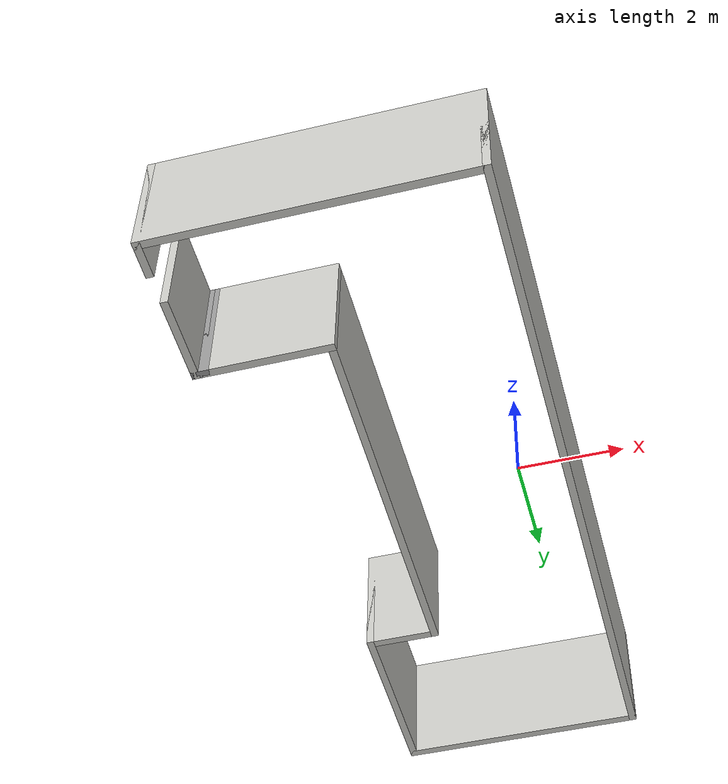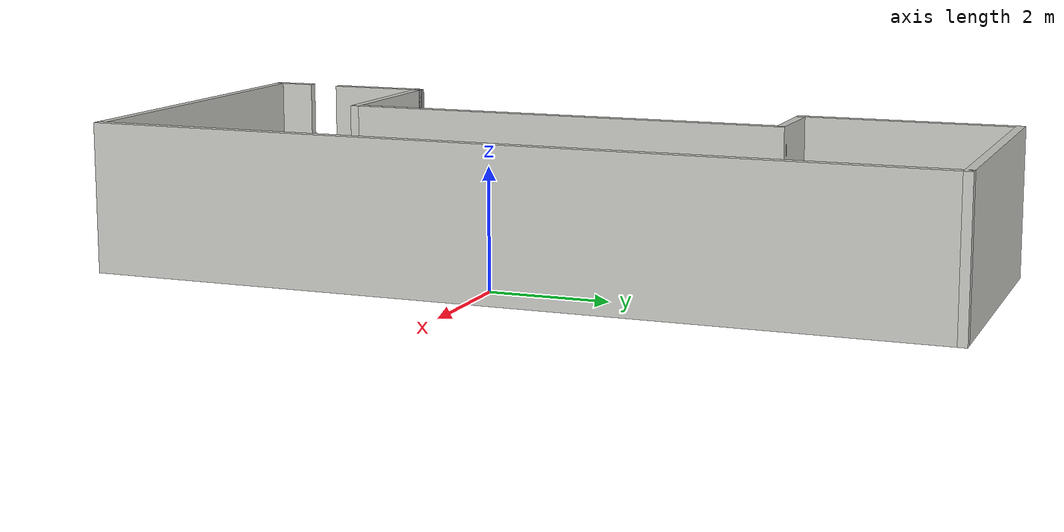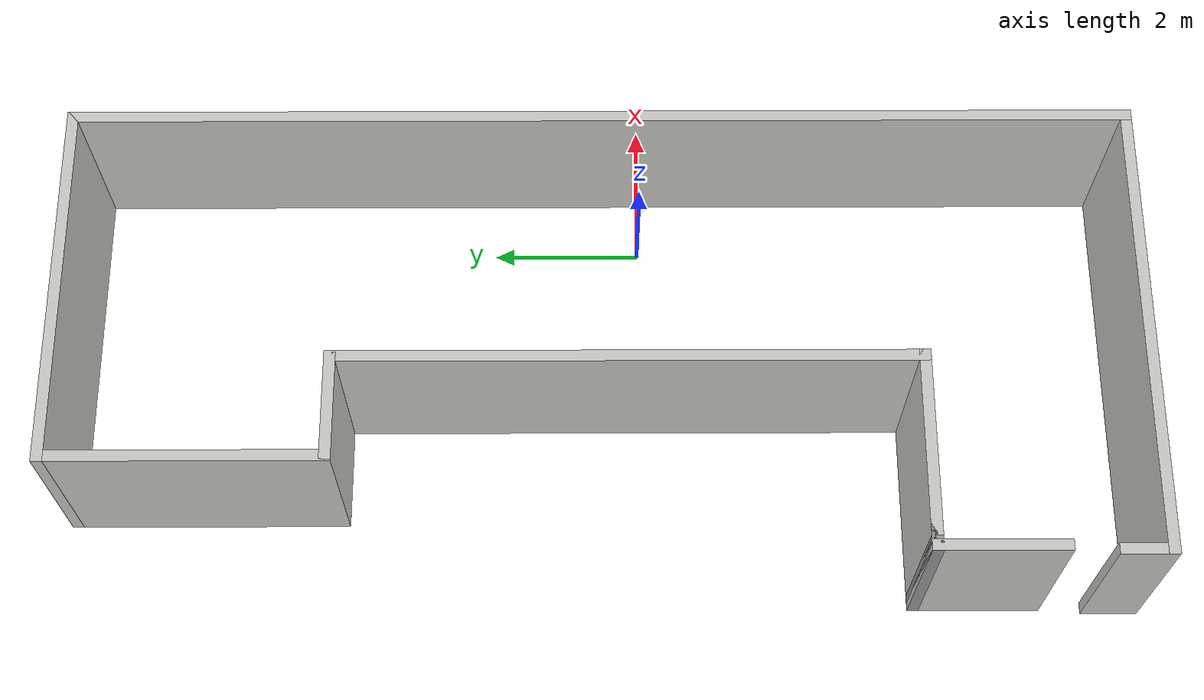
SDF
<?xml version='1.0'?>
<sdf version='1.7'>
  <model name='longC-shaped-room'>
    <pose>-2.16537 0.535432 0 0 -0 0</pose>
    <link name='Wall_0'>
      <collision name='Wall_0_Collision'>
        <geometry>
          <box>
            <size>0.75 0.15 2.5</size>
          </box>
        </geometry>
        <pose>0 0 1.25 0 -0 0</pose>
      </collision>
      <visual name='Wall_0_Visual'>
        <pose>0 0 1.25 0 -0 0</pose>
        <geometry>
          <box>
            <size>0.75 0.15 2.5</size>
          </box>
        </geometry>
        <material>
          <script>
            <uri>file://media/materials/scripts/gazebo.material</uri>
            <name>Gazebo/CeilingTiled</name>
          </script>
          <ambient>0.435294 0.796078 0.67451 1</ambient>
        </material>
        <meta>
          <layer>0</layer>
        </meta>
      </visual>
      <pose>-3.05 -6.75 0 0 -0 -1.5708</pose>
    </link>
    <link name='Wall_1'>
      <collision name='Wall_1_Collision'>
        <geometry>
          <box>
            <size>6.25 0.15 2.5</size>
          </box>
        </geometry>
        <pose>0 0 1.25 0 -0 0</pose>
      </collision>
      <visual name='Wall_1_Visual'>
        <pose>0 0 1.25 0 -0 0</pose>
        <geometry>
          <box>
            <size>6.25 0.15 2.5</size>
          </box>
        </geometry>
        <material>
          <script>
            <uri>file://media/materials/scripts/gazebo.material</uri>
            <name>Gazebo/CeilingTiled</name>
          </script>
          <ambient>0.435294 0.796078 0.67451 1</ambient>
        </material>
        <meta>
          <layer>0</layer>
        </meta>
      </visual>
      <pose>-0 -7.05 0 0 -0 0</pose>
    </link>
    <link name='Wall_10'>
      <collision name='Wall_10_Collision'>
        <geometry>
          <box>
            <size>1.75 0.15 2.5</size>
          </box>
        </geometry>
        <pose>0 0 1.25 0 -0 0</pose>
      </collision>
      <visual name='Wall_10_Visual'>
        <pose>0 0 1.25 0 -0 0</pose>
        <geometry>
          <box>
            <size>1.75 0.15 2.5</size>
          </box>
        </geometry>
        <material>
          <script>
            <uri>file://media/materials/scripts/gazebo.material</uri>
            <name>Gazebo/CeilingTiled</name>
          </script>
          <ambient>0.435294 0.796078 0.67451 1</ambient>
        </material>
        <meta>
          <layer>0</layer>
        </meta>
      </visual>
      <pose>-3 -4.95 0 0 -0 -1.5708</pose>
    </link>
    <link name='Wall_2'>
      <collision name='Wall_2_Collision'>
        <geometry>
          <box>
            <size>14.25 0.15 2.5</size>
          </box>
        </geometry>
        <pose>0 0 1.25 0 -0 0</pose>
      </collision>
      <visual name='Wall_2_Visual'>
        <pose>0 0 1.25 0 -0 0</pose>
        <geometry>
          <box>
            <size>14.25 0.15 2.5</size>
          </box>
        </geometry>
        <material>
          <script>
            <uri>file://media/materials/scripts/gazebo.material</uri>
            <name>Gazebo/CeilingTiled</name>
          </script>
          <ambient>0.435294 0.796078 0.67451 1</ambient>
        </material>
        <meta>
          <layer>0</layer>
        </meta>
      </visual>
      <pose>3.05 0 0 0 -0 1.5708</pose>
    </link>
    <link name='Wall_3'>
      <collision name='Wall_3_Collision'>
        <geometry>
          <box>
            <size>5 0.15 2.5</size>
          </box>
        </geometry>
        <pose>0 0 1.25 0 -0 0</pose>
      </collision>
      <visual name='Wall_3_Visual'>
        <pose>0 0 1.25 0 -0 0</pose>
        <geometry>
          <box>
            <size>5 0.15 2.5</size>
          </box>
        </geometry>
        <material>
          <script>
            <uri>file://media/materials/scripts/gazebo.material</uri>
            <name>Gazebo/CeilingTiled</name>
          </script>
          <ambient>0.435294 0.796078 0.67451 1</ambient>
        </material>
        <meta>
          <layer>0</layer>
        </meta>
      </visual>
      <pose>0.625 7.05 0 0 -0 3.14159</pose>
    </link>
    <link name='Wall_4'>
      <collision name='Wall_4_Collision'>
        <geometry>
          <box>
            <size>3.75 0.15 2.5</size>
          </box>
        </geometry>
        <pose>0 0 1.25 0 -0 0</pose>
      </collision>
      <visual name='Wall_4_Visual'>
        <pose>0 0 1.25 0 -0 0</pose>
        <geometry>
          <box>
            <size>3.75 0.15 2.5</size>
          </box>
        </geometry>
        <material>
          <script>
            <uri>file://media/materials/scripts/gazebo.material</uri>
            <name>Gazebo/CeilingTiled</name>
          </script>
          <ambient>0.435294 0.796078 0.67451 1</ambient>
        </material>
        <meta>
          <layer>0</layer>
        </meta>
      </visual>
      <pose>-1.8 5.25 0 0 -0 -1.5708</pose>
    </link>
    <link name='Wall_5'>
      <collision name='Wall_5_Collision'>
        <geometry>
          <box>
            <size>1.5 0.15 2.5</size>
          </box>
        </geometry>
        <pose>0 0 1.25 0 -0 0</pose>
      </collision>
      <visual name='Wall_5_Visual'>
        <pose>0 0 1.25 0 -0 0</pose>
        <geometry>
          <box>
            <size>1.5 0.15 2.5</size>
          </box>
        </geometry>
        <material>
          <script>
            <uri>file://media/materials/scripts/gazebo.material</uri>
            <name>Gazebo/CeilingTiled</name>
          </script>
          <ambient>0.435294 0.796078 0.67451 1</ambient>
        </material>
        <meta>
          <layer>0</layer>
        </meta>
      </visual>
      <pose>-1.125 3.45 0 0 -0 0</pose>
    </link>
    <link name='Wall_6'>
      <collision name='Wall_6_Collision'>
        <geometry>
          <box>
            <size>7.75 0.15 2.5</size>
          </box>
        </geometry>
        <pose>0 0 1.25 0 -0 0</pose>
      </collision>
      <visual name='Wall_6_Visual'>
        <pose>0 0 1.25 0 -0 0</pose>
        <geometry>
          <box>
            <size>7.75 0.15 2.5</size>
          </box>
        </geometry>
        <material>
          <script>
            <uri>file://media/materials/scripts/gazebo.material</uri>
            <name>Gazebo/CeilingTiled</name>
          </script>
          <ambient>0.435294 0.796078 0.67451 1</ambient>
        </material>
        <meta>
          <layer>0</layer>
        </meta>
      </visual>
      <pose>-0.45 -0.35 0 0 -0 -1.5708</pose>
    </link>
    <link name='Wall_7'>
      <collision name='Wall_7_Collision'>
        <geometry>
          <box>
            <size>2.5 0.15 2.5</size>
          </box>
        </geometry>
        <pose>0 0 1.25 0 -0 0</pose>
      </collision>
      <visual name='Wall_7_Visual'>
        <pose>0 0 1.25 0 -0 0</pose>
        <geometry>
          <box>
            <size>2.5 0.15 2.5</size>
          </box>
        </geometry>
        <material>
          <script>
            <uri>file://media/materials/scripts/gazebo.material</uri>
            <name>Gazebo/CeilingTiled</name>
          </script>
          <ambient>0.435294 0.796078 0.67451 1</ambient>
        </material>
        <meta>
          <layer>0</layer>
        </meta>
      </visual>
      <pose>-1.625 -4.15 0 0 -0 3.14159</pose>
    </link>
    <link name='Wall_8'>
      <collision name='Wall_8_Collision'>
        <geometry>
          <box>
            <size>0.25 0.15 2.5</size>
          </box>
        </geometry>
        <pose>0 0 1.25 0 -0 0</pose>
      </collision>
      <visual name='Wall_8_Visual'>
        <pose>0 0 1.25 0 -0 0</pose>
        <geometry>
          <box>
            <size>0.25 0.15 2.5</size>
          </box>
        </geometry>
        <material>
          <script>
            <uri>file://media/materials/scripts/gazebo.material</uri>
            <name>Gazebo/Grey</name>
          </script>
          <ambient>1 1 1 1</ambient>
        </material>
        <meta>
          <layer>0</layer>
        </meta>
      </visual>
      <pose>-2.85 -4.15 0 0 -0 3.14159</pose>
    </link>
    <link name='Wall_9'>
      <collision name='Wall_9_Collision'>
        <geometry>
          <box>
            <size>0.25 0.15 2.5</size>
          </box>
        </geometry>
        <pose>0 0 1.25 0 -0 0</pose>
      </collision>
      <visual name='Wall_9_Visual'>
        <pose>0 0 1.25 0 -0 0</pose>
        <geometry>
          <box>
            <size>0.25 0.15 2.5</size>
          </box>
        </geometry>
        <material>
          <script>
            <uri>file://media/materials/scripts/gazebo.material</uri>
            <name>Gazebo/Grey</name>
          </script>
          <ambient>1 1 1 1</ambient>
        </material>
        <meta>
          <layer>0</layer>
        </meta>
      </visual>
      <pose>-2.95 -4.15 0 0 -0 3.14159</pose>
    </link>
    <static>1</static>
  </model>
</sdf>
